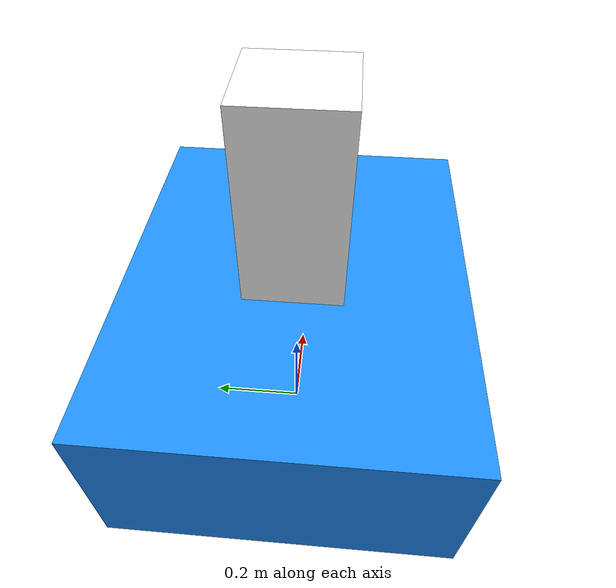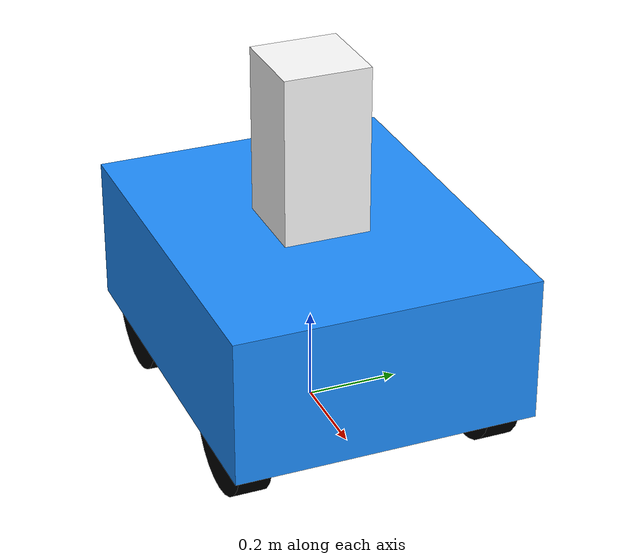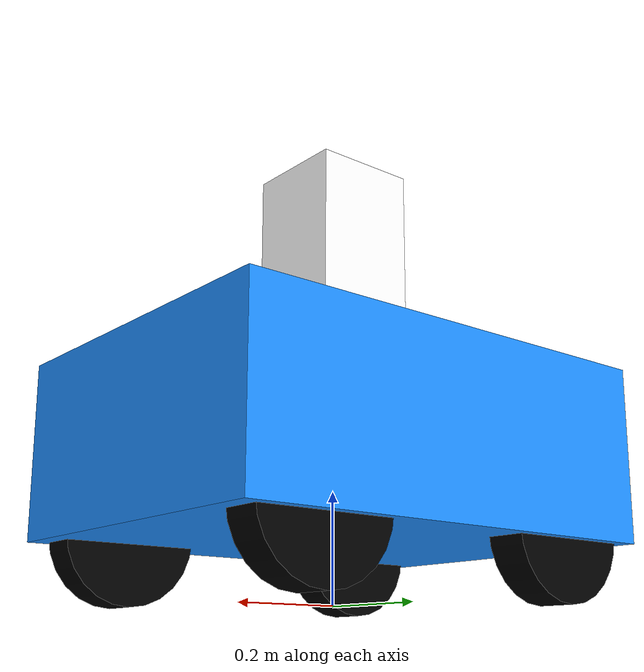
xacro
<?xml version="1.0"?>
<robot xmlns:xacro="http://ros.org/wiki/xacro">
    <xacro:property name="body_length" value="0.84"/>
    <xacro:property name="body_width" value="0.66"/>
    <xacro:property name="body_height" value="0.32"/>
    <xacro:property name="body_mass" value="30"/>
    <xacro:property name="wheel_radius" value="0.125"/>
    <xacro:property name="wheel_width" value="0.07"/>
    <xacro:property name="wheel_offset_x" value="0.265"/>
    <xacro:property name="wheel_offset_y" value="0.275"/>
    <xacro:property name="wheel_offset_z" value="0.015"/>
    <xacro:property name="wheel_mass" value="2"/>
    <xacro:property name="tower_height" value="0.37"/>
    <xacro:property name="tower_width" value="0.19"/>
    <xacro:property name="tower_mass" value="1.1643"/>

    <material name="body">
        <color rgba="0.12 0.56 1 1"/>
    </material>
    <material name="wheel">
        <color rgba="0 0 0 1"/>
    </material>
    <material name="tower">
        <color rgba="1 1 1 1"/>
    </material>

    <link name="base_link"></link>

    <!-- Body -->
    <joint name="body_joint" type="fixed">
        <parent link="base_link"/>
        <child link="body"/>
        <origin xyz="0 0 ${body_height/2+wheel_radius-wheel_offset_z}"/>
    </joint>
    <link name="body">
        <visual>
            <geometry>
                <box size="${body_length} ${body_width} ${body_height}"/>
            </geometry>
            <material name="body"/>
        </visual>
        <collision>
            <geometry>
                <box size="${body_length} ${body_width} ${body_height}"/>
            </geometry>
        </collision>
        <xacro:inertial_box mass="${body_mass}" x="${body_length}" y="${body_width}" z="${body_height}">
            <origin/>
        </xacro:inertial_box>
    </link>

    <!-- Wheels -->
    <joint name="left_wheel_joint" type="continuous">
        <parent link="body"/>
        <child link="left_wheel"/>
        <origin xyz ="${wheel_offset_x} ${wheel_offset_y} -${body_height/2-wheel_offset_z}" rpy="-${pi/2} 0 0"/>
        <axis xyz="0 0 1"/>
    </joint>
    <link name="left_wheel">
        <visual>
            <geometry>
                <cylinder radius="${wheel_radius}" length="${wheel_width}"/>
            </geometry>
            <material name="wheel"/>
        </visual>
        <collision>
            <geometry>
                <cylinder radius="${wheel_radius}" length="${wheel_width}"/>
            </geometry>
        </collision>
        <xacro:inertial_cylinder mass="${wheel_mass}" radius="${wheel_radius}" length="${wheel_width}">
            <origin/>
        </xacro:inertial_cylinder>
    </link>

    <joint name="right_wheel_joint" type="continuous">
        <parent link="body"/>
        <child link="right_wheel"/>
        <origin xyz ="${wheel_offset_x} -${wheel_offset_y} -${body_height/2-wheel_offset_z}" rpy="${pi/2} 0 0"/>
        <axis xyz="0 0 -1"/>
    </joint>
    <link name="right_wheel">
        <visual>
            <geometry>
                <cylinder radius="${wheel_radius}" length="${wheel_width}"/>
            </geometry>
            <material name="wheel"/>
        </visual>
        <collision>
            <geometry>
                <cylinder radius="${wheel_radius}" length="${wheel_width}"/>
            </geometry>
        </collision>
        <xacro:inertial_cylinder mass="${wheel_mass}" radius="${wheel_radius}" length="${wheel_width}">
            <origin/>
        </xacro:inertial_cylinder>
    </link>

    <joint name="rear_left_wheel_joint" type="fixed">
        <parent link="body"/>
        <child link="rear_left_wheel"/>
        <origin xyz ="-${wheel_offset_x} ${wheel_offset_y} -${body_height/2-wheel_offset_z}" rpy="-${pi/2} 0 0"/>
        <axis xyz="0 0 1"/>
    </joint>
    <link name="rear_left_wheel">
        <visual>
            <geometry>
                <cylinder radius="${wheel_radius}" length="${wheel_width}"/>
            </geometry>
            <material name="wheel"/>
        </visual>
        <collision>
            <geometry>
                <cylinder radius="${wheel_radius}" length="${wheel_width}"/>
            </geometry>
        </collision>
        <xacro:inertial_cylinder mass="${wheel_mass}" radius="${wheel_radius}" length="${wheel_width}">
            <origin/>
        </xacro:inertial_cylinder>
    </link>

    <joint name="rear_right_wheel_joint" type="fixed">
        <parent link="body"/>
        <child link="rear_right_wheel"/>
        <origin xyz ="-${wheel_offset_x} -${wheel_offset_y} -${body_height/2-wheel_offset_z}" rpy="${pi/2} 0 0"/>
        <axis xyz="0 0 -1"/>
    </joint>
    <link name="rear_right_wheel">
        <visual>
            <geometry>
                <cylinder radius="${wheel_radius}" length="${wheel_width}"/>
            </geometry>
            <material name="wheel"/>
        </visual>
        <collision>
            <geometry>
                <cylinder radius="${wheel_radius}" length="${wheel_width}"/>
            </geometry>
        </collision>
        <xacro:inertial_cylinder mass="${wheel_mass}" radius="${wheel_radius}" length="${wheel_width}">
            <origin/>
        </xacro:inertial_cylinder>
    </link>

    <joint name="odom_joint" type="fixed">
  <parent link="odom"/>
  <child link="base_link"/>
  <origin xyz="0 0 0" rpy="0 0 0"/>
</joint>

<link name="odom"/>

    <!-- Tower -->
    <joint name="tower_joint" type="fixed">
        <parent link="body"/>
        <child link="tower"/>
        <origin xyz="0 0 ${body_height/2+tower_height/2}"/>
    </joint>
    <link name="tower">
        <visual>
            <geometry>
                <box size="${tower_width} ${tower_width} ${tower_height}"/>
            </geometry>
            <material name="tower"/>
        </visual>
        <collision>
            <geometry>
                <box size="${tower_width} ${tower_width} ${tower_height}"/>
            </geometry>
        </collision>
        <xacro:inertial_box mass="${tower_mass}" x="${tower_width}" y="${tower_width}" z="${tower_height}">
            <origin/>
        </xacro:inertial_box>
    </link>
</robot>
